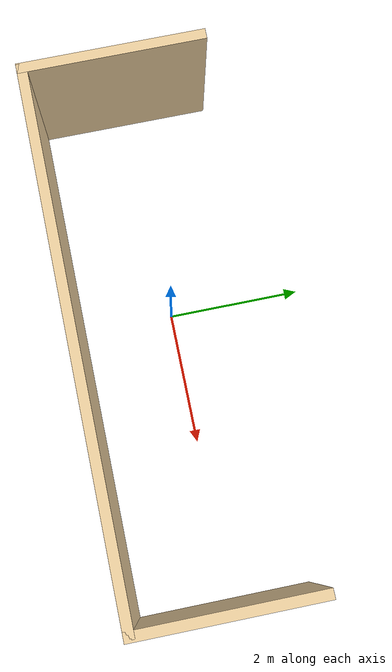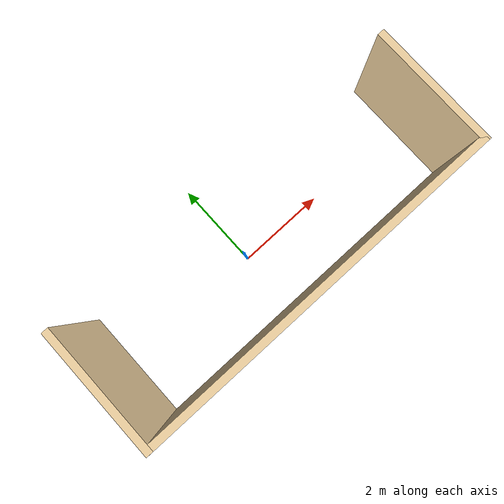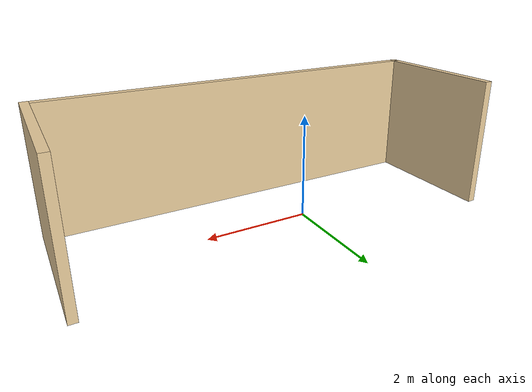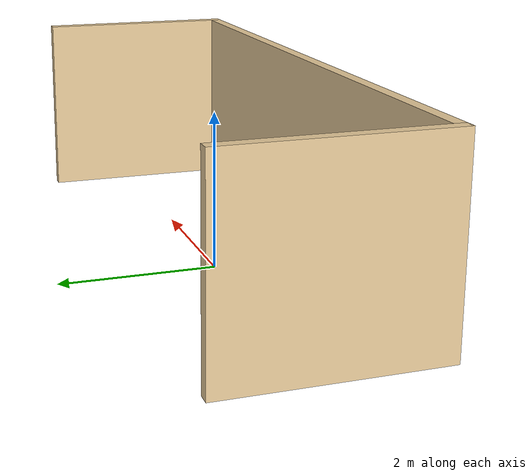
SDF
<?xml version='1.0'?>
<sdf version='1.7'>
  <model name='cobot_room'>
    <link name='Wall_0'>
      <pose>-3.37061 -0.160815 0 0 0 -1.57278</pose>
      <self_collide>0</self_collide>
      <enable_wind>0</enable_wind>
      <kinematic>0</kinematic>
      <visual name='Wall_0_Visual'>
        <pose>0 0 1.25 0 -0 0</pose>
        <geometry>
          <box>
            <size>2.71457 0.15 2.5</size>
          </box>
        </geometry>
        <material>
          <script>
            <uri>file://media/materials/scripts/gazebo.material</uri>
            <name>Gazebo/Grey</name>
          </script>
          <ambient>0.921569 0.807843 0.615686 1</ambient>
          <shader type='pixel'/>
        </material>
        <meta>
          <layer>0</layer>
        </meta>
        <transparency>0</transparency>
        <cast_shadows>1</cast_shadows>
      </visual>
      <collision name='Wall_0_Collision'>
        <laser_retro>0</laser_retro>
        <max_contacts>10</max_contacts>
        <pose>0 0 1.25 0 -0 0</pose>
        <geometry>
          <box>
            <size>2.71457 0.15 2.5</size>
          </box>
        </geometry>
        <surface>
          <friction>
            <ode>
              <mu>1</mu>
              <mu2>1</mu2>
              <fdir1>0 0 0</fdir1>
              <slip1>0</slip1>
              <slip2>0</slip2>
            </ode>
            <torsional>
              <coefficient>1</coefficient>
              <patch_radius>0</patch_radius>
              <surface_radius>0</surface_radius>
              <use_patch_radius>1</use_patch_radius>
              <ode>
                <slip>0</slip>
              </ode>
            </torsional>
          </friction>
          <bounce>
            <restitution_coefficient>0</restitution_coefficient>
            <threshold>1e+06</threshold>
          </bounce>
          <contact>
            <collide_without_contact>0</collide_without_contact>
            <collide_without_contact_bitmask>1</collide_without_contact_bitmask>
            <collide_bitmask>1</collide_bitmask>
            <ode>
              <soft_cfm>0</soft_cfm>
              <soft_erp>0.2</soft_erp>
              <kp>1e+13</kp>
              <kd>1</kd>
              <max_vel>0.01</max_vel>
              <min_depth>0</min_depth>
            </ode>
            <bullet>
              <split_impulse>1</split_impulse>
              <split_impulse_penetration_threshold>-0.01</split_impulse_penetration_threshold>
              <soft_cfm>0</soft_cfm>
              <soft_erp>0.2</soft_erp>
              <kp>1e+13</kp>
              <kd>1</kd>
            </bullet>
          </contact>
        </surface>
      </collision>
    </link>
    <link name='Wall_1'>
      <pose>0.538768 -1.44471 0 0 -0 0</pose>
      <self_collide>0</self_collide>
      <enable_wind>0</enable_wind>
      <kinematic>0</kinematic>
      <inertial>
        <inertia>
          <ixx>0</ixx>
          <ixy>0</ixy>
          <ixz>0</ixz>
          <iyy>0</iyy>
          <iyz>0</iyz>
          <izz>0</izz>
        </inertia>
        <mass>0</mass>
        <pose>0 0 0 0 -0 0</pose>
      </inertial>
      <visual name='Wall_1_Visual'>
        <pose>0 0 1.25 0 -0 0</pose>
        <geometry>
          <box>
            <size>7.94595 0.15 2.5</size>
          </box>
        </geometry>
        <material>
          <script>
            <uri>file://media/materials/scripts/gazebo.material</uri>
            <name>Gazebo/Grey</name>
          </script>
          <ambient>0.921569 0.807843 0.615686 1</ambient>
          <shader type='pixel'/>
        </material>
        <meta>
          <layer>0</layer>
        </meta>
        <transparency>0</transparency>
        <cast_shadows>1</cast_shadows>
      </visual>
      <collision name='Wall_1_Collision'>
        <laser_retro>0</laser_retro>
        <max_contacts>10</max_contacts>
        <pose>0 0 1.25 0 -0 0</pose>
        <geometry>
          <box>
            <size>7.94595 0.15 2.5</size>
          </box>
        </geometry>
        <surface>
          <friction>
            <ode>
              <mu>1</mu>
              <mu2>1</mu2>
              <fdir1>0 0 0</fdir1>
              <slip1>0</slip1>
              <slip2>0</slip2>
            </ode>
            <torsional>
              <coefficient>1</coefficient>
              <patch_radius>0</patch_radius>
              <surface_radius>0</surface_radius>
              <use_patch_radius>1</use_patch_radius>
              <ode>
                <slip>0</slip>
              </ode>
            </torsional>
          </friction>
          <bounce>
            <restitution_coefficient>0</restitution_coefficient>
            <threshold>1e+06</threshold>
          </bounce>
          <contact>
            <collide_without_contact>0</collide_without_contact>
            <collide_without_contact_bitmask>1</collide_without_contact_bitmask>
            <collide_bitmask>1</collide_bitmask>
            <ode>
              <soft_cfm>0</soft_cfm>
              <soft_erp>0.2</soft_erp>
              <kp>1e+13</kp>
              <kd>1</kd>
              <max_vel>0.01</max_vel>
              <min_depth>0</min_depth>
            </ode>
            <bullet>
              <split_impulse>1</split_impulse>
              <split_impulse_penetration_threshold>-0.01</split_impulse_penetration_threshold>
              <soft_cfm>0</soft_cfm>
              <soft_erp>0.2</soft_erp>
              <kp>1e+13</kp>
              <kd>1</kd>
            </bullet>
          </contact>
        </surface>
      </collision>
    </link>
    <link name='Wall_2'>
      <pose>4.47193 -0.156041 0 0 -0 1.5708</pose>
      <self_collide>0</self_collide>
      <enable_wind>0</enable_wind>
      <kinematic>0</kinematic>
      <visual name='Wall_2_Visual'>
        <pose>0 0 1.25 0 -0 0</pose>
        <geometry>
          <box>
            <size>2.72732 0.15 2.5</size>
          </box>
        </geometry>
        <material>
          <script>
            <uri>file://media/materials/scripts/gazebo.material</uri>
            <name>Gazebo/Grey</name>
          </script>
          <ambient>0.921569 0.807843 0.615686 1</ambient>
          <shader type='pixel'/>
        </material>
        <meta>
          <layer>0</layer>
        </meta>
        <transparency>0</transparency>
        <cast_shadows>1</cast_shadows>
      </visual>
      <collision name='Wall_2_Collision'>
        <laser_retro>0</laser_retro>
        <max_contacts>10</max_contacts>
        <pose>0 0 1.25 0 -0 0</pose>
        <geometry>
          <box>
            <size>2.72732 0.15 2.5</size>
          </box>
        </geometry>
        <surface>
          <friction>
            <ode>
              <mu>1</mu>
              <mu2>1</mu2>
              <fdir1>0 0 0</fdir1>
              <slip1>0</slip1>
              <slip2>0</slip2>
            </ode>
            <torsional>
              <coefficient>1</coefficient>
              <patch_radius>0</patch_radius>
              <surface_radius>0</surface_radius>
              <use_patch_radius>1</use_patch_radius>
              <ode>
                <slip>0</slip>
              </ode>
            </torsional>
          </friction>
          <bounce>
            <restitution_coefficient>0</restitution_coefficient>
            <threshold>1e+06</threshold>
          </bounce>
          <contact>
            <collide_without_contact>0</collide_without_contact>
            <collide_without_contact_bitmask>1</collide_without_contact_bitmask>
            <collide_bitmask>1</collide_bitmask>
            <ode>
              <soft_cfm>0</soft_cfm>
              <soft_erp>0.2</soft_erp>
              <kp>1e+13</kp>
              <kd>1</kd>
              <max_vel>0.01</max_vel>
              <min_depth>0</min_depth>
            </ode>
            <bullet>
              <split_impulse>1</split_impulse>
              <split_impulse_penetration_threshold>-0.01</split_impulse_penetration_threshold>
              <soft_cfm>0</soft_cfm>
              <soft_erp>0.2</soft_erp>
              <kp>1e+13</kp>
              <kd>1</kd>
            </bullet>
          </contact>
        </surface>
      </collision>
    </link>
    <static>1</static>
    <allow_auto_disable>1</allow_auto_disable>
  </model>
</sdf>
